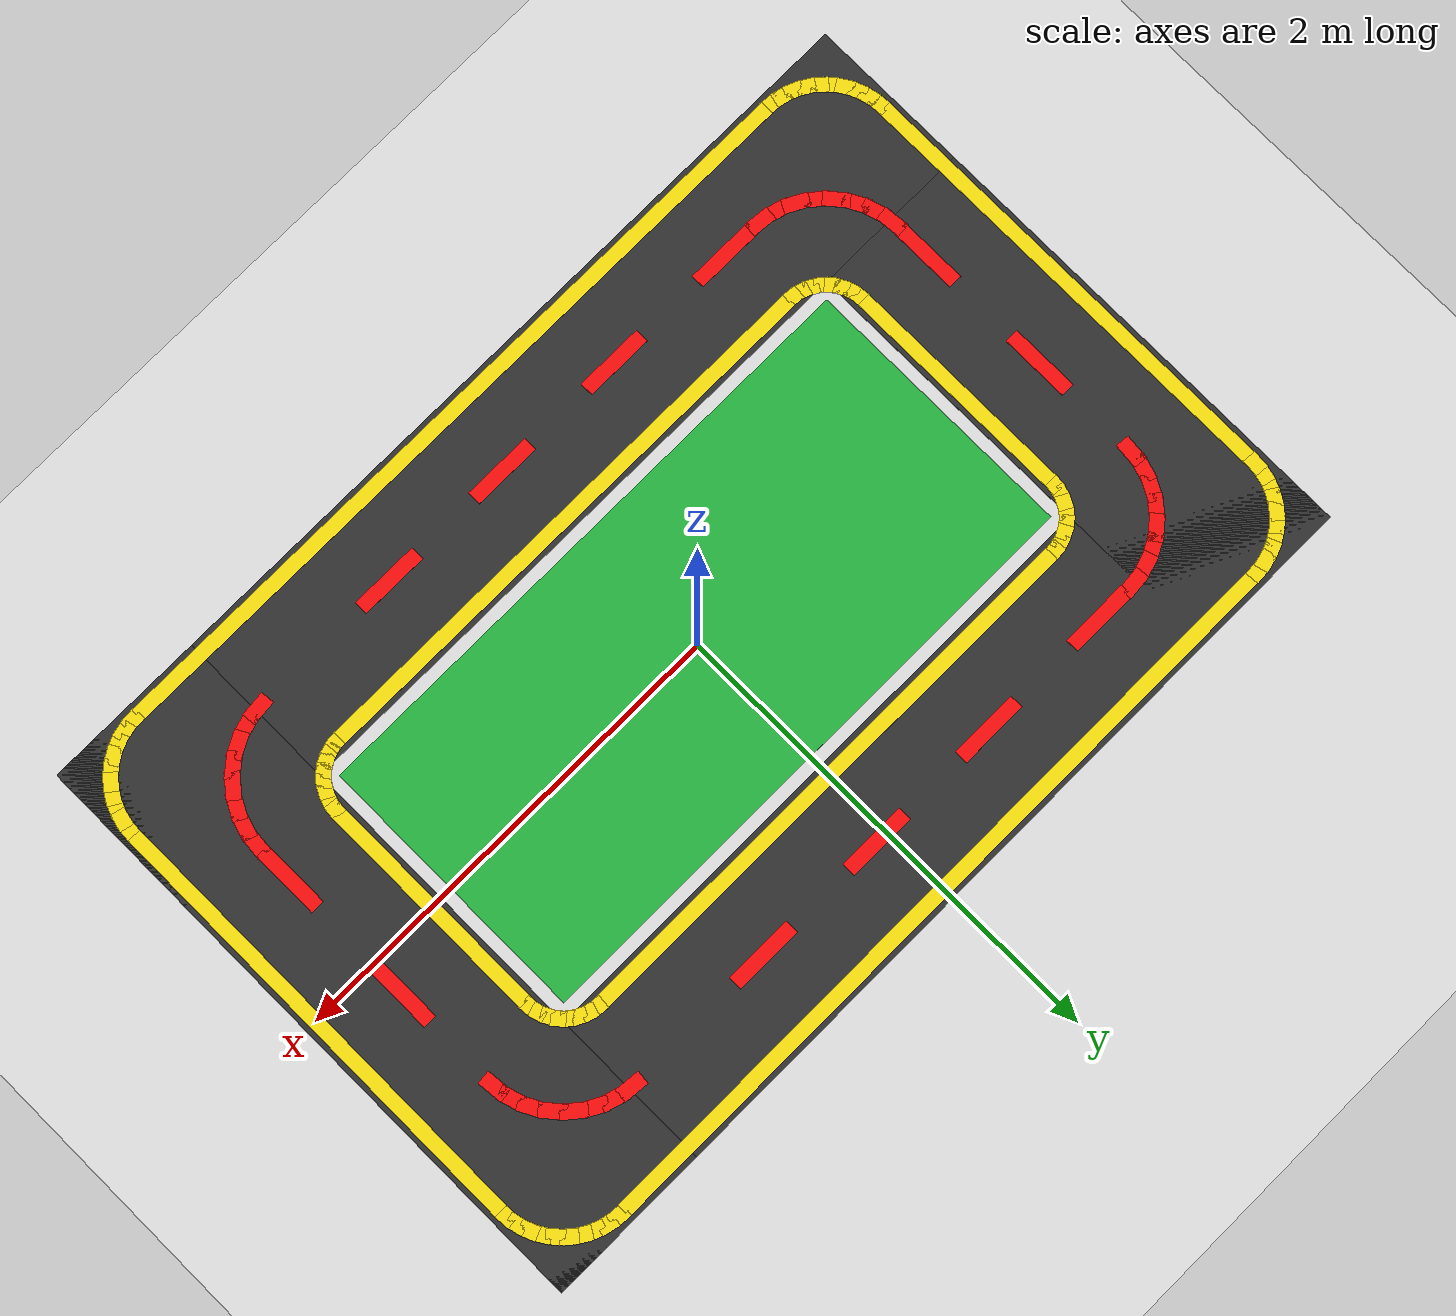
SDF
<?xml version="1.0" ?>
<sdf version="1.8">
  <world name="duckie_lane_world">
    <physics name="1ms" type="ode"><max_step_size>0.001</max_step_size><real_time_factor>1.0</real_time_factor></physics>
    <plugin filename="gz-sim-physics-system" name="gz::sim::systems::Physics"/>
    <plugin filename="gz-sim-user-commands-system" name="gz::sim::systems::UserCommands"/>
    <plugin filename="gz-sim-scene-broadcaster-system" name="gz::sim::systems::SceneBroadcaster"/>
    <plugin filename="gz-sim-sensors-system" name="gz::sim::systems::Sensors"><render_engine>ogre2</render_engine></plugin>
    <light type="directional" name="sun">
      <cast_shadows>true</cast_shadows><pose>0 0 10 0 0 0</pose>
      <diffuse>0.95 0.95 0.9 1</diffuse><specular>0.3 0.3 0.3 1</specular>
      <attenuation><range>1000</range><constant>0.9</constant><linear>0.01</linear><quadratic>0.001</quadratic></attenuation>
      <direction>-0.5 0.1 -0.9</direction>
    </light>
    <model name="ground_plane"><static>true</static>
      <link name="ground_link">
        <collision name="c"><geometry><plane><normal>0 0 1</normal><size>20 20</size></plane></geometry></collision>
        <visual name="v"><geometry><plane><normal>0 0 1</normal><size>20 20</size></plane></geometry>
          <material><ambient>0.85 0.85 0.85 1</ambient><diffuse>0.9 0.9 0.9 1</diffuse></material></visual>
      </link>
    </model>

    <!-- ROAD SURFACE -->
    <model name="road_top"><static>true</static><pose>0.000 1.000 0.0010 0 0 0.0000</pose><link name="l"><visual name="v"><geometry><box><size>4.100 0.700 0.0010</size></box></geometry><material><ambient>0.15 0.15 0.15 1</ambient><diffuse>0.2 0.2 0.2 1</diffuse></material></visual></link></model>
    <model name="road_bot"><static>true</static><pose>0.000 -1.000 0.0010 0 0 0.0000</pose><link name="l"><visual name="v"><geometry><box><size>4.100 0.700 0.0010</size></box></geometry><material><ambient>0.15 0.15 0.15 1</ambient><diffuse>0.2 0.2 0.2 1</diffuse></material></visual></link></model>
    <model name="road_left"><static>true</static><pose>-1.700 0.000 0.0010 0 0 0.0000</pose><link name="l"><visual name="v"><geometry><box><size>0.700 2.700 0.0010</size></box></geometry><material><ambient>0.15 0.15 0.15 1</ambient><diffuse>0.2 0.2 0.2 1</diffuse></material></visual></link></model>
    <model name="road_right"><static>true</static><pose>1.700 0.000 0.0010 0 0 0.0000</pose><link name="l"><visual name="v"><geometry><box><size>0.700 2.700 0.0010</size></box></geometry><material><ambient>0.15 0.15 0.15 1</ambient><diffuse>0.2 0.2 0.2 1</diffuse></material></visual></link></model>

    <!-- GREEN INTERIOR -->
    <model name="grass"><static>true</static><pose>0.000 0.000 0.0015 0 0 0.0000</pose><link name="l"><visual name="v"><geometry><box><size>2.600 1.200 0.0010</size></box></geometry><material><ambient>0.1 0.65 0.2 1</ambient><diffuse>0.15 0.72 0.25 1</diffuse></material></visual></link></model>

    <!-- OUTER BORDER (yellow) -->
    <model name="ro_top"><static>true</static><pose>0.000 1.300 0.0020 0 0 0.0000</pose><link name="l"><visual name="v"><geometry><box><size>3.360 0.060 0.0010</size></box></geometry><material><ambient>0.95 0.85 0 1</ambient><diffuse>1 0.9 0.05 1</diffuse></material></visual></link></model>
    <model name="ro_bot"><static>true</static><pose>0.000 -1.300 0.0020 0 0 0.0000</pose><link name="l"><visual name="v"><geometry><box><size>3.360 0.060 0.0010</size></box></geometry><material><ambient>0.95 0.85 0 1</ambient><diffuse>1 0.9 0.05 1</diffuse></material></visual></link></model>
    <model name="ro_left"><static>true</static><pose>-2.000 0.000 0.0020 0 0 0.0000</pose><link name="l"><visual name="v"><geometry><box><size>0.060 1.960 0.0010</size></box></geometry><material><ambient>0.95 0.85 0 1</ambient><diffuse>1 0.9 0.05 1</diffuse></material></visual></link></model>
    <model name="ro_right"><static>true</static><pose>2.000 0.000 0.0020 0 0 0.0000</pose><link name="l"><visual name="v"><geometry><box><size>0.060 1.960 0.0010</size></box></geometry><material><ambient>0.95 0.85 0 1</ambient><diffuse>1 0.9 0.05 1</diffuse></material></visual></link></model>

    <!-- OUTER CORNERS (yellow) -->
    <model name="roc_tr1"><static>true</static><pose>1.999 1.005 0.0020 0 0 1.6493</pose><link name="l"><visual name="v"><geometry><box><size>0.075 0.060 0.0010</size></box></geometry><material><ambient>0.95 0.85 0 1</ambient><diffuse>1 0.9 0.05 1</diffuse></material></visual></link></model>
    <model name="roc_tr2"><static>true</static><pose>1.991 1.055 0.0020 0 0 1.8064</pose><link name="l"><visual name="v"><geometry><box><size>0.075 0.060 0.0010</size></box></geometry><material><ambient>0.95 0.85 0 1</ambient><diffuse>1 0.9 0.05 1</diffuse></material></visual></link></model>
    <model name="roc_tr3"><static>true</static><pose>1.976 1.102 0.0020 0 0 1.9635</pose><link name="l"><visual name="v"><geometry><box><size>0.075 0.060 0.0010</size></box></geometry><material><ambient>0.95 0.85 0 1</ambient><diffuse>1 0.9 0.05 1</diffuse></material></visual></link></model>
    <model name="roc_tr4"><static>true</static><pose>1.953 1.147 0.0020 0 0 2.1206</pose><link name="l"><visual name="v"><geometry><box><size>0.075 0.060 0.0010</size></box></geometry><material><ambient>0.95 0.85 0 1</ambient><diffuse>1 0.9 0.05 1</diffuse></material></visual></link></model>
    <model name="roc_tr5"><static>true</static><pose>1.923 1.188 0.0020 0 0 2.2777</pose><link name="l"><visual name="v"><geometry><box><size>0.075 0.060 0.0010</size></box></geometry><material><ambient>0.95 0.85 0 1</ambient><diffuse>1 0.9 0.05 1</diffuse></material></visual></link></model>
    <model name="roc_tr6"><static>true</static><pose>1.888 1.223 0.0020 0 0 2.4347</pose><link name="l"><visual name="v"><geometry><box><size>0.075 0.060 0.0010</size></box></geometry><material><ambient>0.95 0.85 0 1</ambient><diffuse>1 0.9 0.05 1</diffuse></material></visual></link></model>
    <model name="roc_tr7"><static>true</static><pose>1.847 1.253 0.0020 0 0 2.5918</pose><link name="l"><visual name="v"><geometry><box><size>0.075 0.060 0.0010</size></box></geometry><material><ambient>0.95 0.85 0 1</ambient><diffuse>1 0.9 0.05 1</diffuse></material></visual></link></model>
    <model name="roc_tr8"><static>true</static><pose>1.802 1.276 0.0020 0 0 2.7489</pose><link name="l"><visual name="v"><geometry><box><size>0.075 0.060 0.0010</size></box></geometry><material><ambient>0.95 0.85 0 1</ambient><diffuse>1 0.9 0.05 1</diffuse></material></visual></link></model>
    <model name="roc_tr9"><static>true</static><pose>1.755 1.291 0.0020 0 0 2.9060</pose><link name="l"><visual name="v"><geometry><box><size>0.075 0.060 0.0010</size></box></geometry><material><ambient>0.95 0.85 0 1</ambient><diffuse>1 0.9 0.05 1</diffuse></material></visual></link></model>
    <model name="roc_tr10"><static>true</static><pose>1.705 1.299 0.0020 0 0 3.0631</pose><link name="l"><visual name="v"><geometry><box><size>0.075 0.060 0.0010</size></box></geometry><material><ambient>0.95 0.85 0 1</ambient><diffuse>1 0.9 0.05 1</diffuse></material></visual></link></model>
    <model name="roc_tl1"><static>true</static><pose>-1.705 1.299 0.0020 0 0 3.2201</pose><link name="l"><visual name="v"><geometry><box><size>0.075 0.060 0.0010</size></box></geometry><material><ambient>0.95 0.85 0 1</ambient><diffuse>1 0.9 0.05 1</diffuse></material></visual></link></model>
    <model name="roc_tl2"><static>true</static><pose>-1.755 1.291 0.0020 0 0 3.3772</pose><link name="l"><visual name="v"><geometry><box><size>0.075 0.060 0.0010</size></box></geometry><material><ambient>0.95 0.85 0 1</ambient><diffuse>1 0.9 0.05 1</diffuse></material></visual></link></model>
    <model name="roc_tl3"><static>true</static><pose>-1.802 1.276 0.0020 0 0 3.5343</pose><link name="l"><visual name="v"><geometry><box><size>0.075 0.060 0.0010</size></box></geometry><material><ambient>0.95 0.85 0 1</ambient><diffuse>1 0.9 0.05 1</diffuse></material></visual></link></model>
    <model name="roc_tl4"><static>true</static><pose>-1.847 1.253 0.0020 0 0 3.6914</pose><link name="l"><visual name="v"><geometry><box><size>0.075 0.060 0.0010</size></box></geometry><material><ambient>0.95 0.85 0 1</ambient><diffuse>1 0.9 0.05 1</diffuse></material></visual></link></model>
    <model name="roc_tl5"><static>true</static><pose>-1.888 1.223 0.0020 0 0 3.8485</pose><link name="l"><visual name="v"><geometry><box><size>0.075 0.060 0.0010</size></box></geometry><material><ambient>0.95 0.85 0 1</ambient><diffuse>1 0.9 0.05 1</diffuse></material></visual></link></model>
    <model name="roc_tl6"><static>true</static><pose>-1.923 1.188 0.0020 0 0 4.0055</pose><link name="l"><visual name="v"><geometry><box><size>0.075 0.060 0.0010</size></box></geometry><material><ambient>0.95 0.85 0 1</ambient><diffuse>1 0.9 0.05 1</diffuse></material></visual></link></model>
    <model name="roc_tl7"><static>true</static><pose>-1.953 1.147 0.0020 0 0 4.1626</pose><link name="l"><visual name="v"><geometry><box><size>0.075 0.060 0.0010</size></box></geometry><material><ambient>0.95 0.85 0 1</ambient><diffuse>1 0.9 0.05 1</diffuse></material></visual></link></model>
    <model name="roc_tl8"><static>true</static><pose>-1.976 1.102 0.0020 0 0 4.3197</pose><link name="l"><visual name="v"><geometry><box><size>0.075 0.060 0.0010</size></box></geometry><material><ambient>0.95 0.85 0 1</ambient><diffuse>1 0.9 0.05 1</diffuse></material></visual></link></model>
    <model name="roc_tl9"><static>true</static><pose>-1.991 1.055 0.0020 0 0 4.4768</pose><link name="l"><visual name="v"><geometry><box><size>0.075 0.060 0.0010</size></box></geometry><material><ambient>0.95 0.85 0 1</ambient><diffuse>1 0.9 0.05 1</diffuse></material></visual></link></model>
    <model name="roc_tl10"><static>true</static><pose>-1.999 1.005 0.0020 0 0 4.6338</pose><link name="l"><visual name="v"><geometry><box><size>0.075 0.060 0.0010</size></box></geometry><material><ambient>0.95 0.85 0 1</ambient><diffuse>1 0.9 0.05 1</diffuse></material></visual></link></model>
    <model name="roc_bl1"><static>true</static><pose>-1.999 -1.005 0.0020 0 0 4.7909</pose><link name="l"><visual name="v"><geometry><box><size>0.075 0.060 0.0010</size></box></geometry><material><ambient>0.95 0.85 0 1</ambient><diffuse>1 0.9 0.05 1</diffuse></material></visual></link></model>
    <model name="roc_bl2"><static>true</static><pose>-1.991 -1.055 0.0020 0 0 4.9480</pose><link name="l"><visual name="v"><geometry><box><size>0.075 0.060 0.0010</size></box></geometry><material><ambient>0.95 0.85 0 1</ambient><diffuse>1 0.9 0.05 1</diffuse></material></visual></link></model>
    <model name="roc_bl3"><static>true</static><pose>-1.976 -1.102 0.0020 0 0 5.1051</pose><link name="l"><visual name="v"><geometry><box><size>0.075 0.060 0.0010</size></box></geometry><material><ambient>0.95 0.85 0 1</ambient><diffuse>1 0.9 0.05 1</diffuse></material></visual></link></model>
    <model name="roc_bl4"><static>true</static><pose>-1.953 -1.147 0.0020 0 0 5.2622</pose><link name="l"><visual name="v"><geometry><box><size>0.075 0.060 0.0010</size></box></geometry><material><ambient>0.95 0.85 0 1</ambient><diffuse>1 0.9 0.05 1</diffuse></material></visual></link></model>
    <model name="roc_bl5"><static>true</static><pose>-1.923 -1.188 0.0020 0 0 5.4192</pose><link name="l"><visual name="v"><geometry><box><size>0.075 0.060 0.0010</size></box></geometry><material><ambient>0.95 0.85 0 1</ambient><diffuse>1 0.9 0.05 1</diffuse></material></visual></link></model>
    <model name="roc_bl6"><static>true</static><pose>-1.888 -1.223 0.0020 0 0 5.5763</pose><link name="l"><visual name="v"><geometry><box><size>0.075 0.060 0.0010</size></box></geometry><material><ambient>0.95 0.85 0 1</ambient><diffuse>1 0.9 0.05 1</diffuse></material></visual></link></model>
    <model name="roc_bl7"><static>true</static><pose>-1.847 -1.253 0.0020 0 0 5.7334</pose><link name="l"><visual name="v"><geometry><box><size>0.075 0.060 0.0010</size></box></geometry><material><ambient>0.95 0.85 0 1</ambient><diffuse>1 0.9 0.05 1</diffuse></material></visual></link></model>
    <model name="roc_bl8"><static>true</static><pose>-1.802 -1.276 0.0020 0 0 5.8905</pose><link name="l"><visual name="v"><geometry><box><size>0.075 0.060 0.0010</size></box></geometry><material><ambient>0.95 0.85 0 1</ambient><diffuse>1 0.9 0.05 1</diffuse></material></visual></link></model>
    <model name="roc_bl9"><static>true</static><pose>-1.755 -1.291 0.0020 0 0 6.0476</pose><link name="l"><visual name="v"><geometry><box><size>0.075 0.060 0.0010</size></box></geometry><material><ambient>0.95 0.85 0 1</ambient><diffuse>1 0.9 0.05 1</diffuse></material></visual></link></model>
    <model name="roc_bl10"><static>true</static><pose>-1.705 -1.299 0.0020 0 0 6.2046</pose><link name="l"><visual name="v"><geometry><box><size>0.075 0.060 0.0010</size></box></geometry><material><ambient>0.95 0.85 0 1</ambient><diffuse>1 0.9 0.05 1</diffuse></material></visual></link></model>
    <model name="roc_br1"><static>true</static><pose>1.705 -1.299 0.0020 0 0 6.3617</pose><link name="l"><visual name="v"><geometry><box><size>0.075 0.060 0.0010</size></box></geometry><material><ambient>0.95 0.85 0 1</ambient><diffuse>1 0.9 0.05 1</diffuse></material></visual></link></model>
    <model name="roc_br2"><static>true</static><pose>1.755 -1.291 0.0020 0 0 6.5188</pose><link name="l"><visual name="v"><geometry><box><size>0.075 0.060 0.0010</size></box></geometry><material><ambient>0.95 0.85 0 1</ambient><diffuse>1 0.9 0.05 1</diffuse></material></visual></link></model>
    <model name="roc_br3"><static>true</static><pose>1.802 -1.276 0.0020 0 0 6.6759</pose><link name="l"><visual name="v"><geometry><box><size>0.075 0.060 0.0010</size></box></geometry><material><ambient>0.95 0.85 0 1</ambient><diffuse>1 0.9 0.05 1</diffuse></material></visual></link></model>
    <model name="roc_br4"><static>true</static><pose>1.847 -1.253 0.0020 0 0 6.8330</pose><link name="l"><visual name="v"><geometry><box><size>0.075 0.060 0.0010</size></box></geometry><material><ambient>0.95 0.85 0 1</ambient><diffuse>1 0.9 0.05 1</diffuse></material></visual></link></model>
    <model name="roc_br5"><static>true</static><pose>1.888 -1.223 0.0020 0 0 6.9900</pose><link name="l"><visual name="v"><geometry><box><size>0.075 0.060 0.0010</size></box></geometry><material><ambient>0.95 0.85 0 1</ambient><diffuse>1 0.9 0.05 1</diffuse></material></visual></link></model>
    <model name="roc_br6"><static>true</static><pose>1.923 -1.188 0.0020 0 0 7.1471</pose><link name="l"><visual name="v"><geometry><box><size>0.075 0.060 0.0010</size></box></geometry><material><ambient>0.95 0.85 0 1</ambient><diffuse>1 0.9 0.05 1</diffuse></material></visual></link></model>
    <model name="roc_br7"><static>true</static><pose>1.953 -1.147 0.0020 0 0 7.3042</pose><link name="l"><visual name="v"><geometry><box><size>0.075 0.060 0.0010</size></box></geometry><material><ambient>0.95 0.85 0 1</ambient><diffuse>1 0.9 0.05 1</diffuse></material></visual></link></model>
    <model name="roc_br8"><static>true</static><pose>1.976 -1.102 0.0020 0 0 7.4613</pose><link name="l"><visual name="v"><geometry><box><size>0.075 0.060 0.0010</size></box></geometry><material><ambient>0.95 0.85 0 1</ambient><diffuse>1 0.9 0.05 1</diffuse></material></visual></link></model>
    <model name="roc_br9"><static>true</static><pose>1.991 -1.055 0.0020 0 0 7.6184</pose><link name="l"><visual name="v"><geometry><box><size>0.075 0.060 0.0010</size></box></geometry><material><ambient>0.95 0.85 0 1</ambient><diffuse>1 0.9 0.05 1</diffuse></material></visual></link></model>
    <model name="roc_br10"><static>true</static><pose>1.999 -1.005 0.0020 0 0 7.7754</pose><link name="l"><visual name="v"><geometry><box><size>0.075 0.060 0.0010</size></box></geometry><material><ambient>0.95 0.85 0 1</ambient><diffuse>1 0.9 0.05 1</diffuse></material></visual></link></model>

    <!-- INNER BORDER (yellow) -->
    <model name="ri_top"><static>true</static><pose>0.000 0.700 0.0020 0 0 0.0000</pose><link name="l"><visual name="v"><geometry><box><size>2.400 0.060 0.0010</size></box></geometry><material><ambient>0.95 0.85 0 1</ambient><diffuse>1 0.9 0.05 1</diffuse></material></visual></link></model>
    <model name="ri_bot"><static>true</static><pose>0.000 -0.700 0.0020 0 0 0.0000</pose><link name="l"><visual name="v"><geometry><box><size>2.400 0.060 0.0010</size></box></geometry><material><ambient>0.95 0.85 0 1</ambient><diffuse>1 0.9 0.05 1</diffuse></material></visual></link></model>
    <model name="ri_left"><static>true</static><pose>-1.400 0.000 0.0020 0 0 0.0000</pose><link name="l"><visual name="v"><geometry><box><size>0.060 1.000 0.0010</size></box></geometry><material><ambient>0.95 0.85 0 1</ambient><diffuse>1 0.9 0.05 1</diffuse></material></visual></link></model>
    <model name="ri_right"><static>true</static><pose>1.400 0.000 0.0020 0 0 0.0000</pose><link name="l"><visual name="v"><geometry><box><size>0.060 1.000 0.0010</size></box></geometry><material><ambient>0.95 0.85 0 1</ambient><diffuse>1 0.9 0.05 1</diffuse></material></visual></link></model>

    <!-- INNER CORNERS (yellow) -->
    <model name="ric_tr1"><static>true</static><pose>1.399 0.520 0.0020 0 0 1.6690</pose><link name="l"><visual name="v"><geometry><box><size>0.059 0.060 0.0010</size></box></geometry><material><ambient>0.95 0.85 0 1</ambient><diffuse>1 0.9 0.05 1</diffuse></material></visual></link></model>
    <model name="ric_tr2"><static>true</static><pose>1.391 0.558 0.0020 0 0 1.8653</pose><link name="l"><visual name="v"><geometry><box><size>0.059 0.060 0.0010</size></box></geometry><material><ambient>0.95 0.85 0 1</ambient><diffuse>1 0.9 0.05 1</diffuse></material></visual></link></model>
    <model name="ric_tr3"><static>true</static><pose>1.376 0.594 0.0020 0 0 2.0617</pose><link name="l"><visual name="v"><geometry><box><size>0.059 0.060 0.0010</size></box></geometry><material><ambient>0.95 0.85 0 1</ambient><diffuse>1 0.9 0.05 1</diffuse></material></visual></link></model>
    <model name="ric_tr4"><static>true</static><pose>1.355 0.627 0.0020 0 0 2.2580</pose><link name="l"><visual name="v"><geometry><box><size>0.059 0.060 0.0010</size></box></geometry><material><ambient>0.95 0.85 0 1</ambient><diffuse>1 0.9 0.05 1</diffuse></material></visual></link></model>
    <model name="ric_tr5"><static>true</static><pose>1.327 0.655 0.0020 0 0 2.4544</pose><link name="l"><visual name="v"><geometry><box><size>0.059 0.060 0.0010</size></box></geometry><material><ambient>0.95 0.85 0 1</ambient><diffuse>1 0.9 0.05 1</diffuse></material></visual></link></model>
    <model name="ric_tr6"><static>true</static><pose>1.294 0.676 0.0020 0 0 2.6507</pose><link name="l"><visual name="v"><geometry><box><size>0.059 0.060 0.0010</size></box></geometry><material><ambient>0.95 0.85 0 1</ambient><diffuse>1 0.9 0.05 1</diffuse></material></visual></link></model>
    <model name="ric_tr7"><static>true</static><pose>1.258 0.691 0.0020 0 0 2.8471</pose><link name="l"><visual name="v"><geometry><box><size>0.059 0.060 0.0010</size></box></geometry><material><ambient>0.95 0.85 0 1</ambient><diffuse>1 0.9 0.05 1</diffuse></material></visual></link></model>
    <model name="ric_tr8"><static>true</static><pose>1.220 0.699 0.0020 0 0 3.0434</pose><link name="l"><visual name="v"><geometry><box><size>0.059 0.060 0.0010</size></box></geometry><material><ambient>0.95 0.85 0 1</ambient><diffuse>1 0.9 0.05 1</diffuse></material></visual></link></model>
    <model name="ric_tl1"><static>true</static><pose>-1.220 0.699 0.0020 0 0 3.2398</pose><link name="l"><visual name="v"><geometry><box><size>0.059 0.060 0.0010</size></box></geometry><material><ambient>0.95 0.85 0 1</ambient><diffuse>1 0.9 0.05 1</diffuse></material></visual></link></model>
    <model name="ric_tl2"><static>true</static><pose>-1.258 0.691 0.0020 0 0 3.4361</pose><link name="l"><visual name="v"><geometry><box><size>0.059 0.060 0.0010</size></box></geometry><material><ambient>0.95 0.85 0 1</ambient><diffuse>1 0.9 0.05 1</diffuse></material></visual></link></model>
    <model name="ric_tl3"><static>true</static><pose>-1.294 0.676 0.0020 0 0 3.6325</pose><link name="l"><visual name="v"><geometry><box><size>0.059 0.060 0.0010</size></box></geometry><material><ambient>0.95 0.85 0 1</ambient><diffuse>1 0.9 0.05 1</diffuse></material></visual></link></model>
    <model name="ric_tl4"><static>true</static><pose>-1.327 0.655 0.0020 0 0 3.8288</pose><link name="l"><visual name="v"><geometry><box><size>0.059 0.060 0.0010</size></box></geometry><material><ambient>0.95 0.85 0 1</ambient><diffuse>1 0.9 0.05 1</diffuse></material></visual></link></model>
    <model name="ric_tl5"><static>true</static><pose>-1.355 0.627 0.0020 0 0 4.0252</pose><link name="l"><visual name="v"><geometry><box><size>0.059 0.060 0.0010</size></box></geometry><material><ambient>0.95 0.85 0 1</ambient><diffuse>1 0.9 0.05 1</diffuse></material></visual></link></model>
    <model name="ric_tl6"><static>true</static><pose>-1.376 0.594 0.0020 0 0 4.2215</pose><link name="l"><visual name="v"><geometry><box><size>0.059 0.060 0.0010</size></box></geometry><material><ambient>0.95 0.85 0 1</ambient><diffuse>1 0.9 0.05 1</diffuse></material></visual></link></model>
    <model name="ric_tl7"><static>true</static><pose>-1.391 0.558 0.0020 0 0 4.4179</pose><link name="l"><visual name="v"><geometry><box><size>0.059 0.060 0.0010</size></box></geometry><material><ambient>0.95 0.85 0 1</ambient><diffuse>1 0.9 0.05 1</diffuse></material></visual></link></model>
    <model name="ric_tl8"><static>true</static><pose>-1.399 0.520 0.0020 0 0 4.6142</pose><link name="l"><visual name="v"><geometry><box><size>0.059 0.060 0.0010</size></box></geometry><material><ambient>0.95 0.85 0 1</ambient><diffuse>1 0.9 0.05 1</diffuse></material></visual></link></model>
    <model name="ric_bl1"><static>true</static><pose>-1.399 -0.520 0.0020 0 0 4.8106</pose><link name="l"><visual name="v"><geometry><box><size>0.059 0.060 0.0010</size></box></geometry><material><ambient>0.95 0.85 0 1</ambient><diffuse>1 0.9 0.05 1</diffuse></material></visual></link></model>
    <model name="ric_bl2"><static>true</static><pose>-1.391 -0.558 0.0020 0 0 5.0069</pose><link name="l"><visual name="v"><geometry><box><size>0.059 0.060 0.0010</size></box></geometry><material><ambient>0.95 0.85 0 1</ambient><diffuse>1 0.9 0.05 1</diffuse></material></visual></link></model>
    <model name="ric_bl3"><static>true</static><pose>-1.376 -0.594 0.0020 0 0 5.2033</pose><link name="l"><visual name="v"><geometry><box><size>0.059 0.060 0.0010</size></box></geometry><material><ambient>0.95 0.85 0 1</ambient><diffuse>1 0.9 0.05 1</diffuse></material></visual></link></model>
    <model name="ric_bl4"><static>true</static><pose>-1.355 -0.627 0.0020 0 0 5.3996</pose><link name="l"><visual name="v"><geometry><box><size>0.059 0.060 0.0010</size></box></geometry><material><ambient>0.95 0.85 0 1</ambient><diffuse>1 0.9 0.05 1</diffuse></material></visual></link></model>
    <model name="ric_bl5"><static>true</static><pose>-1.327 -0.655 0.0020 0 0 5.5960</pose><link name="l"><visual name="v"><geometry><box><size>0.059 0.060 0.0010</size></box></geometry><material><ambient>0.95 0.85 0 1</ambient><diffuse>1 0.9 0.05 1</diffuse></material></visual></link></model>
    <model name="ric_bl6"><static>true</static><pose>-1.294 -0.676 0.0020 0 0 5.7923</pose><link name="l"><visual name="v"><geometry><box><size>0.059 0.060 0.0010</size></box></geometry><material><ambient>0.95 0.85 0 1</ambient><diffuse>1 0.9 0.05 1</diffuse></material></visual></link></model>
    <model name="ric_bl7"><static>true</static><pose>-1.258 -0.691 0.0020 0 0 5.9887</pose><link name="l"><visual name="v"><geometry><box><size>0.059 0.060 0.0010</size></box></geometry><material><ambient>0.95 0.85 0 1</ambient><diffuse>1 0.9 0.05 1</diffuse></material></visual></link></model>
    <model name="ric_bl8"><static>true</static><pose>-1.220 -0.699 0.0020 0 0 6.1850</pose><link name="l"><visual name="v"><geometry><box><size>0.059 0.060 0.0010</size></box></geometry><material><ambient>0.95 0.85 0 1</ambient><diffuse>1 0.9 0.05 1</diffuse></material></visual></link></model>
    <model name="ric_br1"><static>true</static><pose>1.220 -0.699 0.0020 0 0 6.3814</pose><link name="l"><visual name="v"><geometry><box><size>0.059 0.060 0.0010</size></box></geometry><material><ambient>0.95 0.85 0 1</ambient><diffuse>1 0.9 0.05 1</diffuse></material></visual></link></model>
    <model name="ric_br2"><static>true</static><pose>1.258 -0.691 0.0020 0 0 6.5777</pose><link name="l"><visual name="v"><geometry><box><size>0.059 0.060 0.0010</size></box></geometry><material><ambient>0.95 0.85 0 1</ambient><diffuse>1 0.9 0.05 1</diffuse></material></visual></link></model>
    <model name="ric_br3"><static>true</static><pose>1.294 -0.676 0.0020 0 0 6.7741</pose><link name="l"><visual name="v"><geometry><box><size>0.059 0.060 0.0010</size></box></geometry><material><ambient>0.95 0.85 0 1</ambient><diffuse>1 0.9 0.05 1</diffuse></material></visual></link></model>
    <model name="ric_br4"><static>true</static><pose>1.327 -0.655 0.0020 0 0 6.9704</pose><link name="l"><visual name="v"><geometry><box><size>0.059 0.060 0.0010</size></box></geometry><material><ambient>0.95 0.85 0 1</ambient><diffuse>1 0.9 0.05 1</diffuse></material></visual></link></model>
    <model name="ric_br5"><static>true</static><pose>1.355 -0.627 0.0020 0 0 7.1668</pose><link name="l"><visual name="v"><geometry><box><size>0.059 0.060 0.0010</size></box></geometry><material><ambient>0.95 0.85 0 1</ambient><diffuse>1 0.9 0.05 1</diffuse></material></visual></link></model>
    <model name="ric_br6"><static>true</static><pose>1.376 -0.594 0.0020 0 0 7.3631</pose><link name="l"><visual name="v"><geometry><box><size>0.059 0.060 0.0010</size></box></geometry><material><ambient>0.95 0.85 0 1</ambient><diffuse>1 0.9 0.05 1</diffuse></material></visual></link></model>
    <model name="ric_br7"><static>true</static><pose>1.391 -0.558 0.0020 0 0 7.5595</pose><link name="l"><visual name="v"><geometry><box><size>0.059 0.060 0.0010</size></box></geometry><material><ambient>0.95 0.85 0 1</ambient><diffuse>1 0.9 0.05 1</diffuse></material></visual></link></model>
    <model name="ric_br8"><static>true</static><pose>1.399 -0.520 0.0020 0 0 7.7558</pose><link name="l"><visual name="v"><geometry><box><size>0.059 0.060 0.0010</size></box></geometry><material><ambient>0.95 0.85 0 1</ambient><diffuse>1 0.9 0.05 1</diffuse></material></visual></link></model>

    <!-- CENTER LANE DASHES -->
    <model name="dc_t1"><static>true</static><pose>-1.150 1.000 0.0020 0 0 0.0000</pose><link name="l"><visual name="v"><geometry><box><size>0.300 0.060 0.0010</size></box></geometry><material><ambient>0.95 0 0 1</ambient><diffuse>1 0.05 0.05 1</diffuse></material></visual></link></model>
    <model name="dc_t2"><static>true</static><pose>-0.550 1.000 0.0020 0 0 0.0000</pose><link name="l"><visual name="v"><geometry><box><size>0.300 0.060 0.0010</size></box></geometry><material><ambient>0.95 0 0 1</ambient><diffuse>1 0.05 0.05 1</diffuse></material></visual></link></model>
    <model name="dc_t3"><static>true</static><pose>0.050 1.000 0.0020 0 0 0.0000</pose><link name="l"><visual name="v"><geometry><box><size>0.300 0.060 0.0010</size></box></geometry><material><ambient>0.95 0 0 1</ambient><diffuse>1 0.05 0.05 1</diffuse></material></visual></link></model>
    <model name="dc_t4"><static>true</static><pose>0.650 1.000 0.0020 0 0 0.0000</pose><link name="l"><visual name="v"><geometry><box><size>0.300 0.060 0.0010</size></box></geometry><material><ambient>0.95 0 0 1</ambient><diffuse>1 0.05 0.05 1</diffuse></material></visual></link></model>
    <model name="dc_b1"><static>true</static><pose>-1.150 -1.000 0.0020 0 0 0.0000</pose><link name="l"><visual name="v"><geometry><box><size>0.300 0.060 0.0010</size></box></geometry><material><ambient>0.95 0 0 1</ambient><diffuse>1 0.05 0.05 1</diffuse></material></visual></link></model>
    <model name="dc_b2"><static>true</static><pose>-0.550 -1.000 0.0020 0 0 0.0000</pose><link name="l"><visual name="v"><geometry><box><size>0.300 0.060 0.0010</size></box></geometry><material><ambient>0.95 0 0 1</ambient><diffuse>1 0.05 0.05 1</diffuse></material></visual></link></model>
    <model name="dc_b3"><static>true</static><pose>0.050 -1.000 0.0020 0 0 0.0000</pose><link name="l"><visual name="v"><geometry><box><size>0.300 0.060 0.0010</size></box></geometry><material><ambient>0.95 0 0 1</ambient><diffuse>1 0.05 0.05 1</diffuse></material></visual></link></model>
    <model name="dc_b4"><static>true</static><pose>0.650 -1.000 0.0020 0 0 0.0000</pose><link name="l"><visual name="v"><geometry><box><size>0.300 0.060 0.0010</size></box></geometry><material><ambient>0.95 0 0 1</ambient><diffuse>1 0.05 0.05 1</diffuse></material></visual></link></model>
    <model name="dc_l1"><static>true</static><pose>-1.700 -0.450 0.0020 0 0 0.0000</pose><link name="l"><visual name="v"><geometry><box><size>0.060 0.300 0.0010</size></box></geometry><material><ambient>0.95 0 0 1</ambient><diffuse>1 0.05 0.05 1</diffuse></material></visual></link></model>
    <model name="dc_l2"><static>true</static><pose>-1.700 0.150 0.0020 0 0 0.0000</pose><link name="l"><visual name="v"><geometry><box><size>0.060 0.300 0.0010</size></box></geometry><material><ambient>0.95 0 0 1</ambient><diffuse>1 0.05 0.05 1</diffuse></material></visual></link></model>
    <model name="dc_r1"><static>true</static><pose>1.700 -0.450 0.0020 0 0 0.0000</pose><link name="l"><visual name="v"><geometry><box><size>0.060 0.300 0.0010</size></box></geometry><material><ambient>0.95 0 0 1</ambient><diffuse>1 0.05 0.05 1</diffuse></material></visual></link></model>
    <model name="dc_r2"><static>true</static><pose>1.700 0.150 0.0020 0 0 0.0000</pose><link name="l"><visual name="v"><geometry><box><size>0.060 0.300 0.0010</size></box></geometry><material><ambient>0.95 0 0 1</ambient><diffuse>1 0.05 0.05 1</diffuse></material></visual></link></model>

    <!-- CENTER LANE CORNERS -->
    <model name="dcc_tr1"><static>true</static><pose>1.698 0.639 0.0020 0 0 1.6690</pose><link name="l"><visual name="v"><geometry><box><size>0.110 0.060 0.0010</size></box></geometry><material><ambient>0.95 0 0 1</ambient><diffuse>1 0.05 0.05 1</diffuse></material></visual></link></model>
    <model name="dcc_tr2"><static>true</static><pose>1.683 0.716 0.0020 0 0 1.8653</pose><link name="l"><visual name="v"><geometry><box><size>0.110 0.060 0.0010</size></box></geometry><material><ambient>0.95 0 0 1</ambient><diffuse>1 0.05 0.05 1</diffuse></material></visual></link></model>
    <model name="dcc_tr3"><static>true</static><pose>1.653 0.789 0.0020 0 0 2.0617</pose><link name="l"><visual name="v"><geometry><box><size>0.110 0.060 0.0010</size></box></geometry><material><ambient>0.95 0 0 1</ambient><diffuse>1 0.05 0.05 1</diffuse></material></visual></link></model>
    <model name="dcc_tr4"><static>true</static><pose>1.609 0.854 0.0020 0 0 2.2580</pose><link name="l"><visual name="v"><geometry><box><size>0.110 0.060 0.0010</size></box></geometry><material><ambient>0.95 0 0 1</ambient><diffuse>1 0.05 0.05 1</diffuse></material></visual></link></model>
    <model name="dcc_tr5"><static>true</static><pose>1.554 0.909 0.0020 0 0 2.4544</pose><link name="l"><visual name="v"><geometry><box><size>0.110 0.060 0.0010</size></box></geometry><material><ambient>0.95 0 0 1</ambient><diffuse>1 0.05 0.05 1</diffuse></material></visual></link></model>
    <model name="dcc_tr6"><static>true</static><pose>1.489 0.953 0.0020 0 0 2.6507</pose><link name="l"><visual name="v"><geometry><box><size>0.110 0.060 0.0010</size></box></geometry><material><ambient>0.95 0 0 1</ambient><diffuse>1 0.05 0.05 1</diffuse></material></visual></link></model>
    <model name="dcc_tr7"><static>true</static><pose>1.416 0.983 0.0020 0 0 2.8471</pose><link name="l"><visual name="v"><geometry><box><size>0.110 0.060 0.0010</size></box></geometry><material><ambient>0.95 0 0 1</ambient><diffuse>1 0.05 0.05 1</diffuse></material></visual></link></model>
    <model name="dcc_tr8"><static>true</static><pose>1.339 0.998 0.0020 0 0 3.0434</pose><link name="l"><visual name="v"><geometry><box><size>0.110 0.060 0.0010</size></box></geometry><material><ambient>0.95 0 0 1</ambient><diffuse>1 0.05 0.05 1</diffuse></material></visual></link></model>
    <model name="dcc_tl1"><static>true</static><pose>-1.339 0.998 0.0020 0 0 3.2398</pose><link name="l"><visual name="v"><geometry><box><size>0.110 0.060 0.0010</size></box></geometry><material><ambient>0.95 0 0 1</ambient><diffuse>1 0.05 0.05 1</diffuse></material></visual></link></model>
    <model name="dcc_tl2"><static>true</static><pose>-1.416 0.983 0.0020 0 0 3.4361</pose><link name="l"><visual name="v"><geometry><box><size>0.110 0.060 0.0010</size></box></geometry><material><ambient>0.95 0 0 1</ambient><diffuse>1 0.05 0.05 1</diffuse></material></visual></link></model>
    <model name="dcc_tl3"><static>true</static><pose>-1.489 0.953 0.0020 0 0 3.6325</pose><link name="l"><visual name="v"><geometry><box><size>0.110 0.060 0.0010</size></box></geometry><material><ambient>0.95 0 0 1</ambient><diffuse>1 0.05 0.05 1</diffuse></material></visual></link></model>
    <model name="dcc_tl4"><static>true</static><pose>-1.554 0.909 0.0020 0 0 3.8288</pose><link name="l"><visual name="v"><geometry><box><size>0.110 0.060 0.0010</size></box></geometry><material><ambient>0.95 0 0 1</ambient><diffuse>1 0.05 0.05 1</diffuse></material></visual></link></model>
    <model name="dcc_tl5"><static>true</static><pose>-1.609 0.854 0.0020 0 0 4.0252</pose><link name="l"><visual name="v"><geometry><box><size>0.110 0.060 0.0010</size></box></geometry><material><ambient>0.95 0 0 1</ambient><diffuse>1 0.05 0.05 1</diffuse></material></visual></link></model>
    <model name="dcc_tl6"><static>true</static><pose>-1.653 0.789 0.0020 0 0 4.2215</pose><link name="l"><visual name="v"><geometry><box><size>0.110 0.060 0.0010</size></box></geometry><material><ambient>0.95 0 0 1</ambient><diffuse>1 0.05 0.05 1</diffuse></material></visual></link></model>
    <model name="dcc_tl7"><static>true</static><pose>-1.683 0.716 0.0020 0 0 4.4179</pose><link name="l"><visual name="v"><geometry><box><size>0.110 0.060 0.0010</size></box></geometry><material><ambient>0.95 0 0 1</ambient><diffuse>1 0.05 0.05 1</diffuse></material></visual></link></model>
    <model name="dcc_tl8"><static>true</static><pose>-1.698 0.639 0.0020 0 0 4.6142</pose><link name="l"><visual name="v"><geometry><box><size>0.110 0.060 0.0010</size></box></geometry><material><ambient>0.95 0 0 1</ambient><diffuse>1 0.05 0.05 1</diffuse></material></visual></link></model>
    <model name="dcc_bl1"><static>true</static><pose>-1.698 -0.639 0.0020 0 0 4.8106</pose><link name="l"><visual name="v"><geometry><box><size>0.110 0.060 0.0010</size></box></geometry><material><ambient>0.95 0 0 1</ambient><diffuse>1 0.05 0.05 1</diffuse></material></visual></link></model>
    <model name="dcc_bl2"><static>true</static><pose>-1.683 -0.716 0.0020 0 0 5.0069</pose><link name="l"><visual name="v"><geometry><box><size>0.110 0.060 0.0010</size></box></geometry><material><ambient>0.95 0 0 1</ambient><diffuse>1 0.05 0.05 1</diffuse></material></visual></link></model>
    <model name="dcc_bl3"><static>true</static><pose>-1.653 -0.789 0.0020 0 0 5.2033</pose><link name="l"><visual name="v"><geometry><box><size>0.110 0.060 0.0010</size></box></geometry><material><ambient>0.95 0 0 1</ambient><diffuse>1 0.05 0.05 1</diffuse></material></visual></link></model>
    <model name="dcc_bl4"><static>true</static><pose>-1.609 -0.854 0.0020 0 0 5.3996</pose><link name="l"><visual name="v"><geometry><box><size>0.110 0.060 0.0010</size></box></geometry><material><ambient>0.95 0 0 1</ambient><diffuse>1 0.05 0.05 1</diffuse></material></visual></link></model>
    <model name="dcc_bl5"><static>true</static><pose>-1.554 -0.909 0.0020 0 0 5.5960</pose><link name="l"><visual name="v"><geometry><box><size>0.110 0.060 0.0010</size></box></geometry><material><ambient>0.95 0 0 1</ambient><diffuse>1 0.05 0.05 1</diffuse></material></visual></link></model>
    <model name="dcc_bl6"><static>true</static><pose>-1.489 -0.953 0.0020 0 0 5.7923</pose><link name="l"><visual name="v"><geometry><box><size>0.110 0.060 0.0010</size></box></geometry><material><ambient>0.95 0 0 1</ambient><diffuse>1 0.05 0.05 1</diffuse></material></visual></link></model>
    <model name="dcc_bl7"><static>true</static><pose>-1.416 -0.983 0.0020 0 0 5.9887</pose><link name="l"><visual name="v"><geometry><box><size>0.110 0.060 0.0010</size></box></geometry><material><ambient>0.95 0 0 1</ambient><diffuse>1 0.05 0.05 1</diffuse></material></visual></link></model>
    <model name="dcc_bl8"><static>true</static><pose>-1.339 -0.998 0.0020 0 0 6.1850</pose><link name="l"><visual name="v"><geometry><box><size>0.110 0.060 0.0010</size></box></geometry><material><ambient>0.95 0 0 1</ambient><diffuse>1 0.05 0.05 1</diffuse></material></visual></link></model>
    <model name="dcc_br1"><static>true</static><pose>1.339 -0.998 0.0020 0 0 6.3814</pose><link name="l"><visual name="v"><geometry><box><size>0.110 0.060 0.0010</size></box></geometry><material><ambient>0.95 0 0 1</ambient><diffuse>1 0.05 0.05 1</diffuse></material></visual></link></model>
    <model name="dcc_br2"><static>true</static><pose>1.416 -0.983 0.0020 0 0 6.5777</pose><link name="l"><visual name="v"><geometry><box><size>0.110 0.060 0.0010</size></box></geometry><material><ambient>0.95 0 0 1</ambient><diffuse>1 0.05 0.05 1</diffuse></material></visual></link></model>
    <model name="dcc_br3"><static>true</static><pose>1.489 -0.953 0.0020 0 0 6.7741</pose><link name="l"><visual name="v"><geometry><box><size>0.110 0.060 0.0010</size></box></geometry><material><ambient>0.95 0 0 1</ambient><diffuse>1 0.05 0.05 1</diffuse></material></visual></link></model>
    <model name="dcc_br4"><static>true</static><pose>1.554 -0.909 0.0020 0 0 6.9704</pose><link name="l"><visual name="v"><geometry><box><size>0.110 0.060 0.0010</size></box></geometry><material><ambient>0.95 0 0 1</ambient><diffuse>1 0.05 0.05 1</diffuse></material></visual></link></model>
    <model name="dcc_br5"><static>true</static><pose>1.609 -0.854 0.0020 0 0 7.1668</pose><link name="l"><visual name="v"><geometry><box><size>0.110 0.060 0.0010</size></box></geometry><material><ambient>0.95 0 0 1</ambient><diffuse>1 0.05 0.05 1</diffuse></material></visual></link></model>
    <model name="dcc_br6"><static>true</static><pose>1.653 -0.789 0.0020 0 0 7.3631</pose><link name="l"><visual name="v"><geometry><box><size>0.110 0.060 0.0010</size></box></geometry><material><ambient>0.95 0 0 1</ambient><diffuse>1 0.05 0.05 1</diffuse></material></visual></link></model>
    <model name="dcc_br7"><static>true</static><pose>1.683 -0.716 0.0020 0 0 7.5595</pose><link name="l"><visual name="v"><geometry><box><size>0.110 0.060 0.0010</size></box></geometry><material><ambient>0.95 0 0 1</ambient><diffuse>1 0.05 0.05 1</diffuse></material></visual></link></model>
    <model name="dcc_br8"><static>true</static><pose>1.698 -0.639 0.0020 0 0 7.7558</pose><link name="l"><visual name="v"><geometry><box><size>0.110 0.060 0.0010</size></box></geometry><material><ambient>0.95 0 0 1</ambient><diffuse>1 0.05 0.05 1</diffuse></material></visual></link></model>

  </world>
</sdf>
